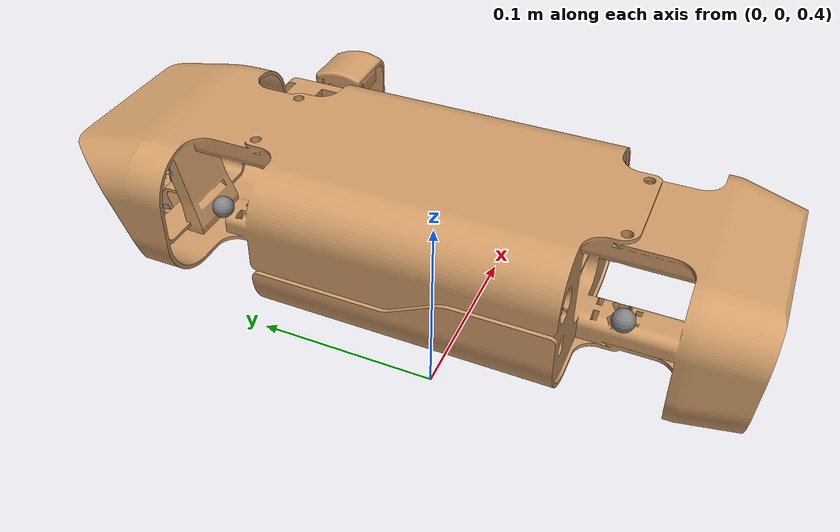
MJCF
<mujoco model="qrpfra_v3_ik_model">
    <compiler angle="degree" coordinate="local"/>
    <option integrator="RK4" timestep="0.02" gravity="0 0 -9.81" density="1.24"/>

    <default>
        <joint armature="1" damping="1" limited="true"/>
        <geom conaffinity="0" condim="3" density="1.24" friction="1 0.5 0.5" margin="0.01" rgba="0.8 0.6 0.4 1"/>

        <default class="servo_motors">
            <position ctrllimited="true" ctrlrange="-100 100" gear="95"/>
        </default>

        <default class="joint_def">
            <joint pos="0 0 0" range="-60 60" type="hinge" damping="150"/>
        </default>

        <default class="Left_foot_Site">
            <site pos="-0.016 0.13 -0.005" type="sphere" size="0.01"/>
        </default>

        <default class="Right_foot_Site">
            <site pos="0.016 0.13 -0.005" type="sphere" size="0.01"/>
        </default>

    </default>

    <asset>
        <mesh name="main_body" file="/Users/deniz/PycharmProjects/QRPfRA_Senior_Project/QRPfRA/QRPfRA_body_m.stl"/>
        <mesh name="Left_Hind_Limb" file="/Users/deniz/PycharmProjects/QRPfRA_Senior_Project/QRPfRA/QRPfRA_left_hindlimb_m.stl"/>
        <mesh name="Left_MidLimb" file="/Users/deniz/PycharmProjects/QRPfRA_Senior_Project/QRPfRA/QRPfRA_left_midlimb_m.stl"/>
        <mesh name="Left_Wrist" file="/Users/deniz/PycharmProjects/QRPfRA_Senior_Project/QRPfRA/QRPfRA_left_wrist_m.stl"/>
        <mesh name="Right_Hind_Limb" file="/Users/deniz/PycharmProjects/QRPfRA_Senior_Project/QRPfRA/QRPfRA_right_hindlimb_m.stl"/>
        <mesh name="Right_MidLimb" file="/Users/deniz/PycharmProjects/QRPfRA_Senior_Project/QRPfRA/QRPfRA_right_midlimb_m.stl"/>
        <mesh name="Right_Wrist" file="/Users/deniz/PycharmProjects/QRPfRA_Senior_Project/QRPfRA/QRPfRA_right_wrist_m.stl"/>
    </asset>

    <worldbody>
        <body name="base_link" pos="0 0 0.5">
            <camera name="track" mode="trackcom" pos="0 -1 0.3" xyaxes="1 0 0 0 0 1"/>

            <geom type="mesh" mesh="main_body" mass="2" friction="0.3" density="2400" />
            <!--joint limited="true" margin="0.01" name="root" pos="0 0 0" type="free" stiffness="0" damping="0" frictionloss="0" armature="0"/-->

            <site name="base_link_Site" pos="0 0 0" type="box" size="0.03 0.05 0.01"/>

            <site name="head_rangefinder" pos="0 0.14 0" type="box" size="0.01 0.005 0.001" euler="-90 0 0"/>
            <site name="rear_rangefinder" pos="0 -0.155 0" type="box" size="0.01 0.005 0.001" euler="90 0 0"/>

            <site name="FL_Leg_ref" pos="-0.04 0.0875 0.015"/>
            <site name="RL_Leg_ref" pos="-0.04 -0.0975 0.015"/>
            <site name="FR_Leg_ref" pos="0.04 0.0875 0.015"/>
            <site name="RR_Leg_ref" pos="0.04 -0.0975 0.015"/>

            <body name="front_Right_Hind_Limb" pos="0.04 0.065 0.013">
                <joint class="joint_def" axis="0 1 0" name="FR_hind_to_base" />
                <geom type="mesh" mesh="Right_Hind_Limb" mass="0.150" density="2400"/>

                <body name="front_Right_MidLimb" pos="0.025 0.023 -0.0105" euler="90 0 0">
                    <joint class="joint_def" axis="1 0 0" name="FR_mid_to_base"  />
                    <geom type="mesh" mesh="Right_MidLimb" mass="0.350" density="2400"/>

                    <body name="front_Right_Wrist" pos="0.005 -0.107 -0.013" euler="-90 0 0">
                        <joint class="joint_def" axis="1 0 0" name="FR_wrist_to_mid" />
                        <geom type="mesh" mesh="Right_Wrist" mass="0.350" density="2400"/>

                        <site name="front_Right_Wrist_Site" class="Right_foot_Site"/>

                    </body>
                </body>
            </body>

        </body>

    </worldbody>

    <actuator>

        <position class="servo_motors" joint="FR_hind_to_base" name="FR_Hind2Base"/>
        <position class="servo_motors" joint="FR_mid_to_base" name="FR_Mid2Hind"/>
        <position class="servo_motors" joint="FR_wrist_to_mid" name="FR_Wrist2Mid"/>

    </actuator>

    <sensor>

        <framepos name="Right_Foot_pos" reftype="site" refname="FR_Leg_ref" objtype="site" objname="front_Right_Wrist_Site"/>

        <jointpos name="FR_Hind2Base_angle" joint="FR_hind_to_base"/>
        <jointpos name="FR_Mid2Hind_angle" joint="FR_mid_to_base"/>
        <jointpos name="FR_Wrist2Mid_angle" joint="FR_wrist_to_mid"/>

    </sensor>

</mujoco>
